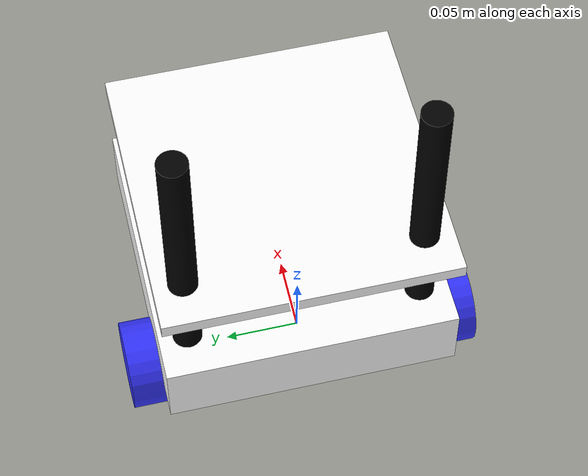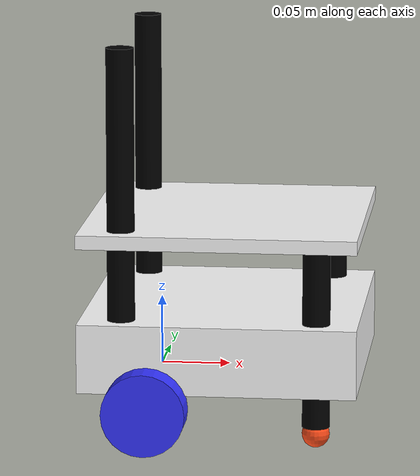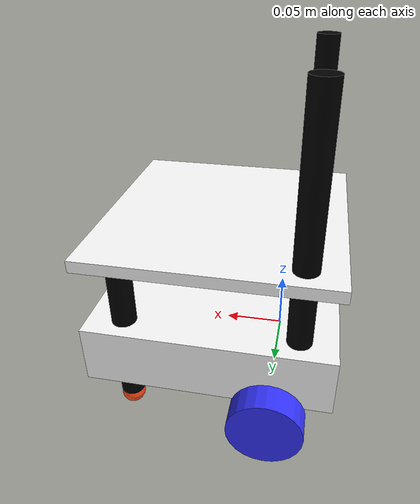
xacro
<?xml version="1.0"?>
<robot xmlns:xacro="http://ros.org/wiki/xacro" name="robot">

    <xacro:include filename="inertial_macros.xacro"/>

    <material name = "white">
        <color rgba="1 1 1 1"/>
    </material>

    <material name = "orange">
        <color rgba="1 0.3 0.1 1"/>
    </material>

    <material name = "blue">
        <color rgba="0.2 0.2 1 1"/>
    </material>

    <material name = "black">
        <color rgba="0 0 0 1"/>
    </material>

    <material name = "red">
        <color rgba="1 0 0 1"/>
    </material>

    <link name="base_link">

    </link>

 <!-- Base -->

    <joint name="base_joint" type="fixed">
        <parent link="base_link"/>
        <child link="base"/>
        <origin xyz="-0.05 0 0"/>
    </joint>

    <joint name="base_footprint_joint" type="fixed">
        <parent link="base_link"/>
        <child link="base_footprint"/>
        <origin xyz="0 0 0" rpy="0 0 0"/>
    </joint>

    <link name="base_footprint">
    </link>

    <link name="base">
        <visual>
            <origin xyz="0.1 0 0.025"/>
            <geometry>
                <box size="0.2 0.2 0.05"/>
            </geometry>
            <material name="white"/>
        </visual>
        <collision>
            <origin xyz="0.1 0 0.025"/>
            <geometry>
                <box size="0.2 0.2 0.05"/>
            </geometry>
        </collision>
        <xacro:inertial_box mass="1.0" x="0.2" y="0.2" z="0.05">
            <origin xyz="0.15 0 0.075" rpy= "0 0 0"/>
        </xacro:inertial_box>
    </link>
    <gazebo reference="base">
        <material>Gazebo/White</material>
    </gazebo>

 <!-- Ruedas -->
    <joint name="rueda_izq_joint" type="continuous">
        <parent link="base_link"/>
        <child link="rueda_izq"/>
        <origin xyz="0 0.11 -0.01" rpy= "-${pi/2} 0 0"/>
        <axis xyz="0 0 1"/>
    </joint>

    <link name="rueda_izq">
        <visual>
            <geometry>
                <cylinder radius="0.03" length="0.024"/>
            </geometry>
            <material name="blue"/>
        </visual>
        <collision>
            <geometry>
                <cylinder radius="0.03" length="0.024"/>
            </geometry>
            <material name="blue"/>
        </collision>
        <xacro:inertial_cylinder mass="0.100" length="0.024" radius="0.03">
            <origin xyz="0 0 0" rpy="0 0 0"/>
        </xacro:inertial_cylinder>
    </link>

    <gazebo reference="rueda_izq">
        <material>Gazebo/Black</material>
    </gazebo>

    <joint name="rueda_der_joint" type="continuous">
        <parent link="base_link"/>
        <child link="rueda_der"/>
        <origin xyz="0 -0.11 -0.01" rpy= "${pi/2} 0 0"/>
        <axis xyz="0 0 -1"/>
    </joint>

    <link name="rueda_der">
        <visual>
            <geometry>
                <cylinder radius="0.03" length="0.024"/>
            </geometry>
            <material name="blue"/>
        </visual>
        <collision>
            <geometry>
                <cylinder radius="0.03" length="0.024"/>
            </geometry>
            <material name="blue"/>
        </collision>
        <xacro:inertial_cylinder mass="0.100" length="0.024" radius="0.03">
            <origin xyz="0 0 0" rpy="0 0 0"/>
        </xacro:inertial_cylinder>
    </link>

    <gazebo reference="rueda_der">
        <material>Gazebo/Black</material>
    </gazebo>

 <!--Soporte de Ruedas libres -->
    <joint name="SopD_libre_joint" type="fixed">
        <parent link="base"/>
        <child link="SopD_libre"/>
        <origin xyz="0.17 0.08 -0.01"/>
    </joint>

    <link name="SopD_libre">
        <visual>
            <geometry>
                <cylinder radius="0.01" length="0.03"/>
            </geometry>
            <material name="black"/>
        </visual>
        <collision>
            <geometry>
                <cylinder radius="0.01" length="0.03"/>
            </geometry>
            <material name="black"/>
        </collision>
        <xacro:inertial_cylinder mass="0.005" length="0.03" radius="0.01">
            <origin xyz="0 0 0" rpy="0 0 0"/>
        </xacro:inertial_cylinder>
    </link>

    <gazebo reference="SopD_libre">
        <material>Gazebo/Black</material>
    </gazebo>

    <joint name="SopI_libre_joint" type="fixed">
        <parent link="base"/>
        <child link="SopI_libre"/>
        <origin xyz="0.17 -0.08 -0.01"/>
    </joint>

    <link name="SopI_libre">
        <visual>
            <geometry>
                <cylinder radius="0.01" length="0.03"/>
            </geometry>
            <material name="black"/>
        </visual>
        <collision>
            <geometry>
                <cylinder radius="0.01" length="0.03"/>
            </geometry>
            <material name="black"/>
        </collision>
        <xacro:inertial_cylinder mass="0.005" length="0.03" radius="0.01">
            <origin xyz="0 0 0" rpy="0 0 0"/>
        </xacro:inertial_cylinder>
    </link>

    <gazebo reference="SopI_libre">
        <material>Gazebo/Black</material>
    </gazebo>
 <!-- Ruedas libres -->
    <joint name="Rueda_libreD_joint" type="fixed">
        <parent link="SopD_libre"/>
        <child link="Rueda_libreD"/>
        <origin xyz="0 0 -0.02"/>
    </joint>

    <link name="Rueda_libreD">
        <visual>
            <geometry>
                <sphere radius="0.01" />
            </geometry>
            <material name="orange"/>
        </visual>
        <collision>
            <geometry>
                <sphere radius="0.01" />
            </geometry>
            <material name="orange"/>
        </collision>
        <xacro:inertial_sphere mass="0.01" radius="0.01">
            <origin xyz="0 0 0" rpy="0 0 0"/>
        </xacro:inertial_sphere>
    </link>

    <gazebo reference="Rueda_libreD">
        <material>Gazebo/Orange</material>
        <mu1 value="0.01"/>
        <mu2 value="0.01"/>
    </gazebo>

    <joint name="Rueda_libreI_joint" type="fixed">
        <parent link="SopI_libre"/>
        <child link="Rueda_libreI"/>
        <origin xyz="0 0 -0.02"/>
    </joint>

    <link name="Rueda_libreI">
        <visual>
            <geometry>
                <sphere radius="0.01" />
            </geometry>
            <material name="orange"/>
        </visual>
        <collision>
            <geometry>
                <sphere radius="0.01" />
            </geometry>
            <material name="orange"/>
        </collision>
        <xacro:inertial_sphere mass="0.01" radius="0.01">
            <origin xyz="0 0 0" rpy="0 0 0"/>
        </xacro:inertial_sphere>
    </link>

    <gazebo reference="Rueda_libreI">
        <material>Gazebo/Orange</material>
        <mu1 value="0.001"/>
        <mu2 value="0.001"/>
    </gazebo>

 <!-- Barras de union -->
    <joint name="Barra_joint" type="fixed">
        <parent link="base"/>
        <child link="Barra1"/>
        <origin xyz="0.17 0.08 0.081"/>
    </joint>

    <link name="Barra1">
        <visual>
            <geometry>
                <cylinder radius="0.01" length="0.062"/>
            </geometry>
            <material name="black"/>
        </visual>
        <collision>
            <geometry>
                <cylinder radius="0.01" length="0.062"/>
            </geometry>
            <material name="black"/>
        </collision>
        <xacro:inertial_cylinder mass="0.04" length="0.062" radius="0.01">
            <origin xyz="0 0 0" rpy="0 0 0"/>
        </xacro:inertial_cylinder>
    </link>

    <gazebo reference="Barra1">
        <material>Gazebo/Black</material>
    </gazebo>

    <joint name="Barra2_joint" type="fixed">
        <parent link="base"/>
        <child link="Barra2"/>
        <origin xyz="0.17 -0.08 0.081"/>
    </joint>

    <link name="Barra2">
        <visual>
            <geometry>
                <cylinder radius="0.01" length="0.062"/>
            </geometry>
            <material name="black"/>
        </visual>
        <collision>
            <geometry>
                <cylinder radius="0.01" length="0.062"/>
            </geometry>
            <material name="black"/>
        </collision>
        <xacro:inertial_cylinder mass="0.04" length="0.062" radius="0.01">
            <origin xyz="0 0 0" rpy="0 0 0"/>
        </xacro:inertial_cylinder>
    </link>

    <gazebo reference="Barra2">
        <material>Gazebo/Black</material>
    </gazebo>

    <joint name="Barra3_joint" type="fixed">
        <parent link="base"/>
        <child link="Barra3"/>
        <origin xyz="0.03 0.08 0.081"/>
    </joint>

    <link name="Barra3">
        <visual>
            <geometry>
                <cylinder radius="0.01" length="0.062"/>
            </geometry>
            <material name="black"/>
        </visual>
        <collision>
            <geometry>
                <cylinder radius="0.01" length="0.062"/>
            </geometry>
            <material name="black"/>
        </collision>
        <xacro:inertial_cylinder mass="0.04" length="0.062" radius="0.01">
            <origin xyz="0 0 0" rpy="0 0 0"/>
        </xacro:inertial_cylinder>
    </link>

    <gazebo reference="Barra3">
        <material>Gazebo/Black</material>
    </gazebo>

    <joint name="Barra4_joint" type="fixed">
        <parent link="base"/>
        <child link="Barra4"/>
        <origin xyz="0.03 -0.08 0.081"/>
    </joint>

    <link name="Barra4">
        <visual>
            <geometry>
                <cylinder radius="0.01" length="0.062"/>
            </geometry>
            <material name="black"/>
        </visual>
        <collision>
            <geometry>
                <cylinder radius="0.01" length="0.062"/>
            </geometry>
            <material name="black"/>
        </collision>
        <xacro:inertial_cylinder mass="0.04" length="0.062" radius="0.01">
            <origin xyz="0 0 0" rpy="0 0 0"/>
        </xacro:inertial_cylinder>
    </link>

    <gazebo reference="Barra4">
        <material>Gazebo/Black</material>
    </gazebo>

 <!-- tapa o asiento -->
    <joint name="tapa_joint" type="fixed">
        <parent link="base_link"/>
        <child link="tapa"/>
        <origin xyz="-0.05 0 0"/>
    </joint>

    <link name="tapa">
        <visual>
            <origin xyz="0.1 0 0.11"/>
            <geometry>
                <box size="0.2 0.2 0.01"/>
            </geometry>
            <material name="white"/>
        </visual>
        <collision>
            <origin xyz="0.1 0 0.11"/>
            <geometry>
                <box size="0.2 0.2 0.01"/>
            </geometry>
            <material name="white"/>
        </collision>
        <xacro:inertial_box mass="0.05" x="0.2" y="0.2" z="0.01">
            <origin xyz="0 0 0" rpy= "0 0 0"/>
        </xacro:inertial_box>
    </link>

    <joint name="EspaldarI_joint" type="fixed">
        <parent link="tapa"/>
        <child link="EspaldarI"/>
        <origin xyz="0.03 -0.08 0.181"/>
    </joint>

    <link name="EspaldarI">
        <visual>
            <geometry>
                <cylinder radius="0.01" length="0.132"/>
            </geometry>
            <material name="black"/>
        </visual>
        <collision>
            <geometry>
                <cylinder radius="0.01" length="0.0132"/>
            </geometry>
            <material name="black"/>
        </collision>
        <xacro:inertial_cylinder mass="0.04" length="0.132" radius="0.01">
            <origin xyz="0 0 0" rpy="0 0 0"/>
        </xacro:inertial_cylinder>
    </link>

    <gazebo reference="EspaldarI">
        <material>Gazebo/White</material>
    </gazebo>

    <joint name="EspaldarD_joint" type="fixed">
        <parent link="tapa"/>
        <child link="EspaldarD"/>
        <origin xyz="0.03 0.08 0.181"/>
    </joint>

    <link name="EspaldarD">
        <visual>
            <geometry>
                <cylinder radius="0.01" length="0.132"/>
            </geometry>
            <material name="black"/>
        </visual>
        <collision>
            <geometry>
                <cylinder radius="0.01" length="0.0132"/>
            </geometry>
            <material name="black"/>
        </collision>
        <xacro:inertial_cylinder mass="0.04" length="0.132" radius="0.01">
            <origin xyz="0 0 0" rpy="0 0 0"/>
        </xacro:inertial_cylinder>
    </link>

    <gazebo reference="EspaldarD">
        <material>Gazebo/White</material>
    </gazebo>

</robot>
